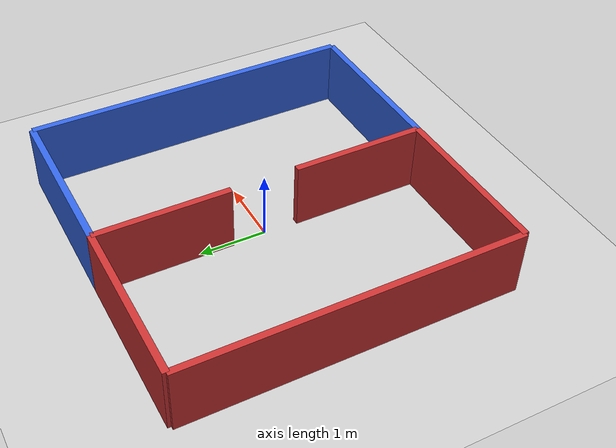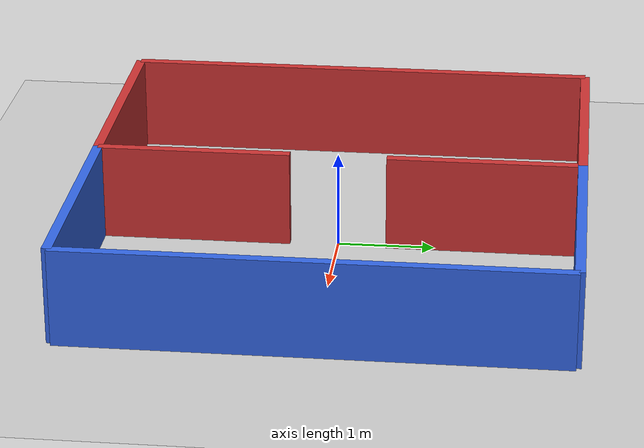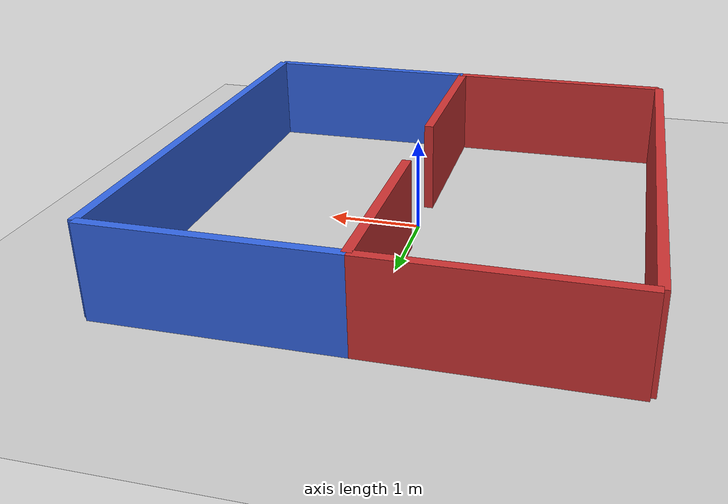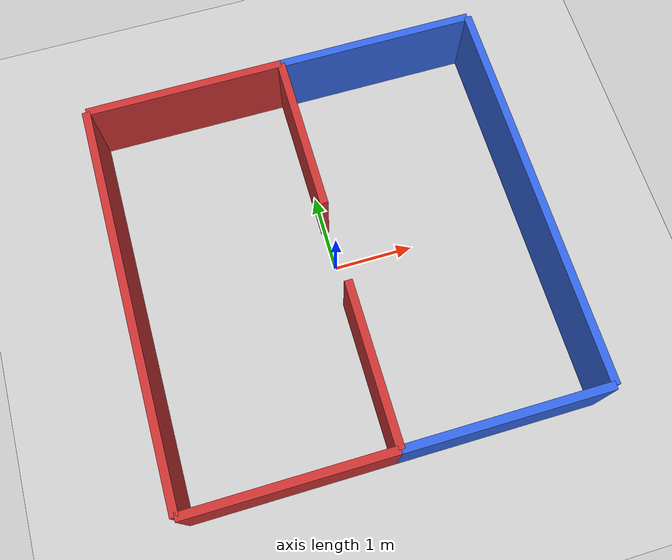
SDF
<sdf version="1.6">
 <world name="two_room_world">
  <include><uri>model://ground_plane</uri></include>
  <include><uri>model://sun</uri></include>
  <model name="room1_wall_left">
   <static>true</static>
   <link name="link">
    <collision name="col">
     <geometry><box><size>0.1 5 1</size></box></geometry>
     <pose>-2.5 0 0.5 0 0 0</pose>
    </collision>
    <visual name="vis">
     <geometry><box><size>0.1 5 1</size></box></geometry>
     <material><diffuse>0.8 0.2 0.2 1</diffuse></material>
     <pose>-2.5 0 0.5 0 0 0</pose>
    </visual>
   </link>
  </model>
  <model name="room1_wall_right_top">
   <static>true</static>
   <link name="link">
    <collision name="col">
     <geometry><box><size>0.1 2 1</size></box></geometry>
     <pose>0 1.5 0.5 0 0 0</pose>
    </collision>
    <visual name="vis">
     <geometry><box><size>0.1 2 1</size></box></geometry>
     <material><diffuse>0.8 0.2 0.2 1</diffuse></material>
     <pose>0 1.5 0.5 0 0 0</pose>
    </visual>
   </link>
  </model>
  <model name="room1_wall_right_bottom">
   <static>true</static>
   <link name="link">
    <collision name="col">
     <geometry><box><size>0.1 2 1</size></box></geometry>
     <pose>0 -1.5 0.5 0 0 0</pose>
    </collision>
    <visual name="vis">
     <geometry><box><size>0.1 2 1</size></box></geometry>
     <material><diffuse>0.8 0.2 0.2 1</diffuse></material>
     <pose>0 -1.5 0.5 0 0 0</pose>
    </visual>
   </link>
  </model>
  <model name="room1_wall_top">
   <static>true</static>
   <link name="link">
    <collision name="col">
     <geometry><box><size>2.5 0.1 1</size></box></geometry>
     <pose>-1.25 2.5 0.5 0 0 0</pose>
    </collision>
    <visual name="vis">
     <geometry><box><size>2.5 0.1 1</size></box></geometry>
     <material><diffuse>0.8 0.2 0.2 1</diffuse></material>
     <pose>-1.25 2.5 0.5 0 0 0</pose>
    </visual>
   </link>
  </model>
  <model name="room1_wall_bottom">
   <static>true</static>
   <link name="link">
    <collision name="col">
     <geometry><box><size>2.5 0.1 1</size></box></geometry>
     <pose>-1.25 -2.5 0.5 0 0 0</pose>
    </collision>
    <visual name="vis">
     <geometry><box><size>2.5 0.1 1</size></box></geometry>
     <material><diffuse>0.8 0.2 0.2 1</diffuse></material>
     <pose>-1.25 -2.5 0.5 0 0 0</pose>
    </visual>
   </link>
  </model>
  <model name="room2_wall_right">
   <static>true</static>
   <link name="link">
    <collision name="col">
     <geometry><box><size>0.1 5 1</size></box></geometry>
     <pose>2.5 0 0.5 0 0 0</pose>
    </collision>
    <visual name="vis">
     <geometry><box><size>0.1 5 1</size></box></geometry>
     <material><diffuse>0.2 0.4 0.9 1</diffuse></material>
     <pose>2.5 0 0.5 0 0 0</pose>
    </visual>
   </link>
  </model>
  <model name="room2_wall_top">
   <static>true</static>
   <link name="link">
    <collision name="col">
     <geometry><box><size>2.5 0.1 1</size></box></geometry>
     <pose>1.25 2.5 0.5 0 0 0</pose>
    </collision>
    <visual name="vis">
     <geometry><box><size>2.5 0.1 1</size></box></geometry>
     <material><diffuse>0.2 0.4 0.9 1</diffuse></material>
     <pose>1.25 2.5 0.5 0 0 0</pose>
    </visual>
   </link>
  </model>
  <model name="room2_wall_bottom">
   <static>true</static>
   <link name="link">
    <collision name="col">
     <geometry><box><size>2.5 0.1 1</size></box></geometry>
     <pose>1.25 -2.5 0.5 0 0 0</pose>
    </collision>
    <visual name="vis">
     <geometry><box><size>2.5 0.1 1</size></box></geometry>
     <material><diffuse>0.2 0.4 0.9 1</diffuse></material>
     <pose>1.25 -2.5 0.5 0 0 0</pose>
    </visual>
   </link>
  </model>
 </world>
</sdf>
